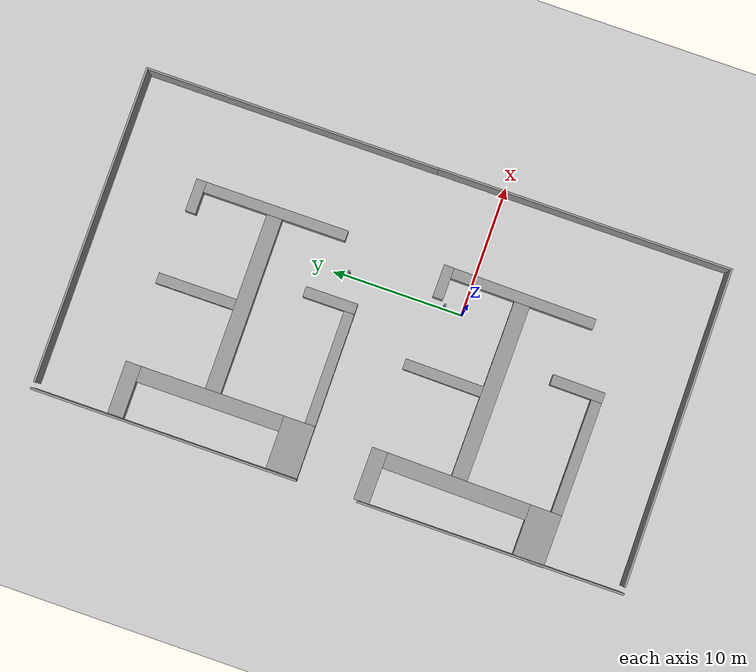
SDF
<sdf version="1.7">
 <world name="default">
  <light name="sun" type="directional">
   <pose>0 0 10 0 -0 0</pose>
   <diffuse>0.8 0.8 0.8 1</diffuse>
   <specular>0.2 0.2 0.2 1</specular>
   <attenuation>
    <range>1000</range>
    <constant>0.9</constant>
    <linear>0.01</linear>
    <quadratic>0.001</quadratic>
   </attenuation>
   <direction>-0.5 0.1 -0.9</direction>
   <spot><inner_angle>0</inner_angle><outer_angle>0</outer_angle><falloff>0</falloff></spot>
  </light>
  <model name="ground_plane">
   <static>1</static>
   <link name="link">
    <collision name="collision">
     <geometry><plane><normal>0 0 1</normal><size>100 100</size></plane></geometry>
     <surface><friction><ode><mu>100</mu><mu2>50</mu2></ode></friction></surface>
    </collision>
    <visual name="visual">
     <cast_shadows>0</cast_shadows>
     <geometry><plane><normal>0 0 1</normal><size>100 100</size></plane></geometry>
     <material>
      <script><uri>file://media/materials/scripts/gazebo.material</uri><name>Gazebo/Grey</name></script>
     </material>
    </visual>
   </link>
  </model>
  <gravity>0 0 -9.8</gravity>
  <magnetic_field>6e-06 2.3e-05 -4.2e-05</magnetic_field>
  <atmosphere type="adiabatic"/>
  <physics name="default_physics" default="0" type="ode">
   <max_step_size>0.001</max_step_size>
   <real_time_factor>1</real_time_factor>
   <real_time_update_rate>1000</real_time_update_rate>
  </physics>
  <scene><ambient>0.4 0.4 0.4 1</ambient><background>0.7 0.7 0.7 1</background><shadows>1</shadows></scene>
  <spherical_coordinates>
   <surface_model>EARTH_WGS84</surface_model>
   <latitude_deg>0</latitude_deg>
   <longitude_deg>0</longitude_deg>
   <elevation>0</elevation>
   <heading_deg>0</heading_deg>
  </spherical_coordinates>
  <model name="path">
   <link name="Wall_18">
    <pose>-12.5035 0.003409 0 0 -0 1.5708</pose>
    <inertial>
     <mass>1</mass>
     <inertia><ixx>1</ixx><ixy>0</ixy><ixz>0</ixz><iyy>1</iyy><iyz>0</iyz><izz>1</izz></inertia>
    </inertial>
    <visual name="Wall_18_Visual">
     <pose>0 0 0.5 0 -0 0</pose>
     <geometry><box><size>11 1.2 1</size></box></geometry>
     <material>
      <script><uri>file://media/materials/scripts/gazebo.material</uri><name>Gazebo/Grey</name></script>
      <ambient>1 1 1 1</ambient>
      <shader type="pixel"><normal_map>__default__</normal_map></shader>
      <diffuse>0.7 0.7 0.7 1</diffuse>
      <specular>0.01 0.01 0.01 1</specular>
      <emissive>0 0 0 1</emissive>
     </material>
     <meta><layer>0</layer></meta>
    </visual>
    <collision name="Wall_18_Collision">
     <pose>0 0 0.5 0 -0 0</pose>
     <geometry><box><size>11 1.2 1</size></box></geometry>
     <surface>
      <friction>
       <ode><mu>1</mu><mu2>1</mu2><fdir1>0 0 0</fdir1><slip1>0</slip1><slip2>0</slip2></ode>
       <torsional>
        <coefficient>1</coefficient>
        <patch_radius>0</patch_radius>
        <surface_radius>0</surface_radius>
        <use_patch_radius>1</use_patch_radius>
        <ode><slip>0</slip></ode>
       </torsional>
      </friction>
      <bounce><restitution_coefficient>0</restitution_coefficient><threshold>1e+06</threshold></bounce>
      <contact>
       <collide_without_contact>0</collide_without_contact>
       <collide_without_contact_bitmask>1</collide_without_contact_bitmask>
       <collide_bitmask>1</collide_bitmask>
       <ode>
        <soft_cfm>0</soft_cfm>
        <soft_erp>0.2</soft_erp>
        <kp>1e+13</kp>
        <kd>1</kd>
        <max_vel>0.01</max_vel>
        <min_depth>0</min_depth>
       </ode>
       <bullet>
        <split_impulse>1</split_impulse>
        <split_impulse_penetration_threshold>-0.01</split_impulse_penetration_threshold>
        <soft_cfm>0</soft_cfm>
        <soft_erp>0.2</soft_erp>
        <kp>1e+13</kp>
        <kd>1</kd>
       </bullet>
      </contact>
     </surface>
    </collision>
   </link>
   <link name="Wall_20">
    <pose>-5.15319 -0.016904 0 0 0 -0.000489</pose>
    <inertial>
     <mass>1</mass>
     <inertia><ixx>1</ixx><ixy>0</ixy><ixz>0</ixz><iyy>1</iyy><iyz>0</iyz><izz>1</izz></inertia>
    </inertial>
    <visual name="Wall_20_Visual">
     <pose>0 0 0.5 0 -0 0</pose>
     <geometry><box><size>13.5 1.2 1</size></box></geometry>
     <material>
      <script><uri>file://media/materials/scripts/gazebo.material</uri><name>Gazebo/Grey</name></script>
      <ambient>1 1 1 1</ambient>
      <shader type="pixel"><normal_map>__default__</normal_map></shader>
      <diffuse>0.7 0.7 0.7 1</diffuse>
      <specular>0.01 0.01 0.01 1</specular>
      <emissive>0 0 0 1</emissive>
     </material>
     <meta><layer>0</layer></meta>
    </visual>
    <collision name="Wall_20_Collision">
     <pose>0 0 0.5 0 -0 0</pose>
     <geometry><box><size>13.5 1.2 1</size></box></geometry>
     <surface>
      <friction>
       <ode><mu>1</mu><mu2>1</mu2><fdir1>0 0 0</fdir1><slip1>0</slip1><slip2>0</slip2></ode>
       <torsional>
        <coefficient>1</coefficient>
        <patch_radius>0</patch_radius>
        <surface_radius>0</surface_radius>
        <use_patch_radius>1</use_patch_radius>
        <ode><slip>0</slip></ode>
       </torsional>
      </friction>
      <bounce><restitution_coefficient>0</restitution_coefficient><threshold>1e+06</threshold></bounce>
      <contact>
       <collide_without_contact>0</collide_without_contact>
       <collide_without_contact_bitmask>1</collide_without_contact_bitmask>
       <collide_bitmask>1</collide_bitmask>
       <ode>
        <soft_cfm>0</soft_cfm>
        <soft_erp>0.2</soft_erp>
        <kp>1e+13</kp>
        <kd>1</kd>
        <max_vel>0.01</max_vel>
        <min_depth>0</min_depth>
       </ode>
       <bullet>
        <split_impulse>1</split_impulse>
        <split_impulse_penetration_threshold>-0.01</split_impulse_penetration_threshold>
        <soft_cfm>0</soft_cfm>
        <soft_erp>0.2</soft_erp>
        <kp>1e+13</kp>
        <kd>1</kd>
       </bullet>
      </contact>
     </surface>
    </collision>
   </link>
   <link name="Wall_21">
    <pose>1.99706 0.024718 0 0 -0 1.57072</pose>
    <inertial>
     <mass>1</mass>
     <inertia><ixx>1</ixx><ixy>0</ixy><ixz>0</ixz><iyy>1</iyy><iyz>0</iyz><izz>1</izz></inertia>
    </inertial>
    <visual name="Wall_21_Visual">
     <pose>0 0 0.5 0 -0 0</pose>
     <geometry><box><size>11 0.8 1</size></box></geometry>
     <material>
      <script><uri>file://media/materials/scripts/gazebo.material</uri><name>Gazebo/Grey</name></script>
      <ambient>1 1 1 1</ambient>
      <shader type="pixel"><normal_map>__default__</normal_map></shader>
      <diffuse>0.7 0.7 0.7 1</diffuse>
      <specular>0.01 0.01 0.01 1</specular>
      <emissive>0 0 0 1</emissive>
     </material>
     <meta><layer>0</layer></meta>
    </visual>
    <collision name="Wall_21_Collision">
     <pose>0 0 0.5 0 -0 0</pose>
     <geometry><box><size>11 0.8 1</size></box></geometry>
     <surface>
      <friction>
       <ode><mu>1</mu><mu2>1</mu2><fdir1>0 0 0</fdir1><slip1>0</slip1><slip2>0</slip2></ode>
       <torsional>
        <coefficient>1</coefficient>
        <patch_radius>0</patch_radius>
        <surface_radius>0</surface_radius>
        <use_patch_radius>1</use_patch_radius>
        <ode><slip>0</slip></ode>
       </torsional>
      </friction>
      <bounce><restitution_coefficient>0</restitution_coefficient><threshold>1e+06</threshold></bounce>
      <contact>
       <collide_without_contact>0</collide_without_contact>
       <collide_without_contact_bitmask>1</collide_without_contact_bitmask>
       <collide_bitmask>1</collide_bitmask>
       <ode>
        <soft_cfm>0</soft_cfm>
        <soft_erp>0.2</soft_erp>
        <kp>1e+13</kp>
        <kd>1</kd>
        <max_vel>0.01</max_vel>
        <min_depth>0</min_depth>
       </ode>
       <bullet>
        <split_impulse>1</split_impulse>
        <split_impulse_penetration_threshold>-0.01</split_impulse_penetration_threshold>
        <soft_cfm>0</soft_cfm>
        <soft_erp>0.2</soft_erp>
        <kp>1e+13</kp>
        <kd>1</kd>
       </bullet>
      </contact>
     </surface>
    </collision>
   </link>
   <link name="Wall_25">
    <pose>-5.42538 3.58343 0 0 -0 1.5708</pose>
    <inertial>
     <mass>1</mass>
     <inertia><ixx>1</ixx><ixy>0</ixy><ixz>0</ixz><iyy>1</iyy><iyz>0</iyz><izz>1</izz></inertia>
    </inertial>
    <visual name="Wall_25_Visual">
     <pose>0 0 0.5 0 -0 0</pose>
     <geometry><box><size>6 0.8 1</size></box></geometry>
     <material>
      <script><uri>file://media/materials/scripts/gazebo.material</uri><name>Gazebo/Grey</name></script>
      <ambient>1 1 1 1</ambient>
      <shader type="pixel"><normal_map>__default__</normal_map></shader>
      <diffuse>0.7 0.7 0.7 1</diffuse>
      <specular>0.01 0.01 0.01 1</specular>
      <emissive>0 0 0 1</emissive>
     </material>
     <meta><layer>0</layer></meta>
    </visual>
    <collision name="Wall_25_Collision">
     <pose>0 0 0.5 0 -0 0</pose>
     <geometry><box><size>6 0.8 1</size></box></geometry>
     <surface>
      <friction>
       <ode><mu>1</mu><mu2>1</mu2><fdir1>0 0 0</fdir1><slip1>0</slip1><slip2>0</slip2></ode>
       <torsional>
        <coefficient>1</coefficient>
        <patch_radius>0</patch_radius>
        <surface_radius>0</surface_radius>
        <use_patch_radius>1</use_patch_radius>
        <ode><slip>0</slip></ode>
       </torsional>
      </friction>
      <bounce><restitution_coefficient>0</restitution_coefficient><threshold>1e+06</threshold></bounce>
      <contact>
       <collide_without_contact>0</collide_without_contact>
       <collide_without_contact_bitmask>1</collide_without_contact_bitmask>
       <collide_bitmask>1</collide_bitmask>
       <ode>
        <soft_cfm>0</soft_cfm>
        <soft_erp>0.2</soft_erp>
        <kp>1e+13</kp>
        <kd>1</kd>
        <max_vel>0.01</max_vel>
        <min_depth>0</min_depth>
       </ode>
       <bullet>
        <split_impulse>1</split_impulse>
        <split_impulse_penetration_threshold>-0.01</split_impulse_penetration_threshold>
        <soft_cfm>0</soft_cfm>
        <soft_erp>0.2</soft_erp>
        <kp>1e+13</kp>
        <kd>1</kd>
       </bullet>
      </contact>
     </surface>
    </collision>
   </link>
   <link name="Wall_27">
    <pose>-7.5785 -7.49658 0 0 -0 0</pose>
    <inertial>
     <mass>1</mass>
     <inertia><ixx>1</ixx><ixy>0</ixy><ixz>0</ixz><iyy>1</iyy><iyz>0</iyz><izz>1</izz></inertia>
    </inertial>
    <visual name="Wall_27_Visual">
     <pose>0 0 0.5 0 -0 0</pose>
     <geometry><box><size>8.65 0.8 1</size></box></geometry>
     <material>
      <script><uri>file://media/materials/scripts/gazebo.material</uri><name>Gazebo/Grey</name></script>
      <ambient>1 1 1 1</ambient>
      <shader type="pixel"><normal_map>__default__</normal_map></shader>
      <diffuse>0.7 0.7 0.7 1</diffuse>
      <specular>0.01 0.01 0.01 1</specular>
      <emissive>0 0 0 1</emissive>
     </material>
     <meta><layer>0</layer></meta>
    </visual>
    <collision name="Wall_27_Collision">
     <pose>0 0 0.5 0 -0 0</pose>
     <geometry><box><size>8.65 0.8 1</size></box></geometry>
     <surface>
      <friction>
       <ode><mu>1</mu><mu2>1</mu2><fdir1>0 0 0</fdir1><slip1>0</slip1><slip2>0</slip2></ode>
       <torsional>
        <coefficient>1</coefficient>
        <patch_radius>0</patch_radius>
        <surface_radius>0</surface_radius>
        <use_patch_radius>1</use_patch_radius>
        <ode><slip>0</slip></ode>
       </torsional>
      </friction>
      <bounce><restitution_coefficient>0</restitution_coefficient><threshold>1e+06</threshold></bounce>
      <contact>
       <collide_without_contact>0</collide_without_contact>
       <collide_without_contact_bitmask>1</collide_without_contact_bitmask>
       <collide_bitmask>1</collide_bitmask>
       <ode>
        <soft_cfm>0</soft_cfm>
        <soft_erp>0.2</soft_erp>
        <kp>1e+13</kp>
        <kd>1</kd>
        <max_vel>0.01</max_vel>
        <min_depth>0</min_depth>
       </ode>
       <bullet>
        <split_impulse>1</split_impulse>
        <split_impulse_penetration_threshold>-0.01</split_impulse_penetration_threshold>
        <soft_cfm>0</soft_cfm>
        <soft_erp>0.2</soft_erp>
        <kp>1e+13</kp>
        <kd>1</kd>
       </bullet>
      </contact>
     </surface>
    </collision>
   </link>
   <link name="Wall_31">
    <pose>-2.85351 -5.89658 0 0 0 -1.57079</pose>
    <inertial>
     <mass>1</mass>
     <inertia><ixx>1</ixx><ixy>0</ixy><ixz>0</ixz><iyy>1</iyy><iyz>0</iyz><izz>1</izz></inertia>
    </inertial>
    <visual name="Wall_31_Visual">
     <pose>0 0 0.5 0 -0 0</pose>
     <geometry><box><size>4 0.8 1</size></box></geometry>
     <material>
      <script><uri>file://media/materials/scripts/gazebo.material</uri><name>Gazebo/Grey</name></script>
      <ambient>1 1 1 1</ambient>
      <shader type="pixel"><normal_map>__default__</normal_map></shader>
      <diffuse>0.7 0.7 0.7 1</diffuse>
      <specular>0.01 0.01 0.01 1</specular>
      <emissive>0 0 0 1</emissive>
     </material>
     <meta><layer>0</layer></meta>
    </visual>
    <collision name="Wall_31_Collision">
     <pose>0 0 0.5 0 -0 0</pose>
     <geometry><box><size>4 0.8 1</size></box></geometry>
     <surface>
      <friction>
       <ode><mu>1</mu><mu2>1</mu2><fdir1>0 0 0</fdir1><slip1>0</slip1><slip2>0</slip2></ode>
       <torsional>
        <coefficient>1</coefficient>
        <patch_radius>0</patch_radius>
        <surface_radius>0</surface_radius>
        <use_patch_radius>1</use_patch_radius>
        <ode><slip>0</slip></ode>
       </torsional>
      </friction>
      <bounce><restitution_coefficient>0</restitution_coefficient><threshold>1e+06</threshold></bounce>
      <contact>
       <collide_without_contact>0</collide_without_contact>
       <collide_without_contact_bitmask>1</collide_without_contact_bitmask>
       <collide_bitmask>1</collide_bitmask>
       <ode>
        <soft_cfm>0</soft_cfm>
        <soft_erp>0.2</soft_erp>
        <kp>1e+13</kp>
        <kd>1</kd>
        <max_vel>0.01</max_vel>
        <min_depth>0</min_depth>
       </ode>
       <bullet>
        <split_impulse>1</split_impulse>
        <split_impulse_penetration_threshold>-0.01</split_impulse_penetration_threshold>
        <soft_cfm>0</soft_cfm>
        <soft_erp>0.2</soft_erp>
        <kp>1e+13</kp>
        <kd>1</kd>
       </bullet>
      </contact>
     </surface>
    </collision>
   </link>
   <link name="Wall_35">
    <pose>1.1473 5.91911 0 0 -0 0.000465</pose>
    <inertial>
     <mass>1</mass>
     <inertia><ixx>1</ixx><ixy>0</ixy><ixz>0</ixz><iyy>1</iyy><iyz>0</iyz><izz>1</izz></inertia>
    </inertial>
    <visual name="Wall_35_Visual">
     <pose>0 0 0.5 0 -0 0</pose>
     <geometry><box><size>2.5 0.79 1</size></box></geometry>
     <material>
      <script><uri>file://media/materials/scripts/gazebo.material</uri><name>Gazebo/Grey</name></script>
      <ambient>1 1 1 1</ambient>
      <shader type="pixel"><normal_map>__default__</normal_map></shader>
      <diffuse>0.7 0.7 0.7 1</diffuse>
      <specular>0.01 0.01 0.01 1</specular>
      <emissive>0 0 0 1</emissive>
     </material>
     <meta><layer>0</layer></meta>
    </visual>
    <collision name="Wall_35_Collision">
     <pose>0 0 0.5 0 -0 0</pose>
     <geometry><box><size>2.5 0.8 1</size></box></geometry>
     <surface>
      <friction>
       <ode><mu>1</mu><mu2>1</mu2><fdir1>0 0 0</fdir1><slip1>0</slip1><slip2>0</slip2></ode>
       <torsional>
        <coefficient>1</coefficient>
        <patch_radius>0</patch_radius>
        <surface_radius>0</surface_radius>
        <use_patch_radius>1</use_patch_radius>
        <ode><slip>0</slip></ode>
       </torsional>
      </friction>
      <bounce><restitution_coefficient>0</restitution_coefficient><threshold>1e+06</threshold></bounce>
      <contact>
       <collide_without_contact>0</collide_without_contact>
       <collide_without_contact_bitmask>1</collide_without_contact_bitmask>
       <collide_bitmask>1</collide_bitmask>
       <ode>
        <soft_cfm>0</soft_cfm>
        <soft_erp>0.2</soft_erp>
        <kp>1e+13</kp>
        <kd>1</kd>
        <max_vel>0.01</max_vel>
        <min_depth>0</min_depth>
       </ode>
       <bullet>
        <split_impulse>1</split_impulse>
        <split_impulse_penetration_threshold>-0.01</split_impulse_penetration_threshold>
        <soft_cfm>0</soft_cfm>
        <soft_erp>0.2</soft_erp>
        <kp>1e+13</kp>
        <kd>1</kd>
       </bullet>
      </contact>
     </surface>
    </collision>
   </link>
   <link name="Wall_44">
    <pose>-13.9035 6.10342 0 0 -0 3.14159</pose>
    <inertial>
     <mass>1</mass>
     <inertia><ixx>1</ixx><ixy>0</ixy><ixz>0</ixz><iyy>1</iyy><iyz>0</iyz><izz>1</izz></inertia>
    </inertial>
    <visual name="Wall_44_Visual">
     <pose>0 0 0.5 0 -0 0</pose>
     <geometry><box><size>4 1.2 1</size></box></geometry>
     <material>
      <script><uri>file://media/materials/scripts/gazebo.material</uri><name>Gazebo/Grey</name></script>
      <ambient>1 1 1 1</ambient>
      <shader type="pixel"><normal_map>__default__</normal_map></shader>
      <diffuse>0.7 0.7 0.7 1</diffuse>
      <specular>0.01 0.01 0.01 1</specular>
      <emissive>0 0 0 1</emissive>
     </material>
     <meta><layer>0</layer></meta>
    </visual>
    <collision name="Wall_44_Collision">
     <pose>0 0 0.5 0 -0 0</pose>
     <geometry><box><size>4 1.2 1</size></box></geometry>
     <surface>
      <friction>
       <ode><mu>1</mu><mu2>1</mu2><fdir1>0 0 0</fdir1><slip1>0</slip1><slip2>0</slip2></ode>
       <torsional>
        <coefficient>1</coefficient>
        <patch_radius>0</patch_radius>
        <surface_radius>0</surface_radius>
        <use_patch_radius>1</use_patch_radius>
        <ode><slip>0</slip></ode>
       </torsional>
      </friction>
      <bounce><restitution_coefficient>0</restitution_coefficient><threshold>1e+06</threshold></bounce>
      <contact>
       <collide_without_contact>0</collide_without_contact>
       <collide_without_contact_bitmask>1</collide_without_contact_bitmask>
       <collide_bitmask>1</collide_bitmask>
       <ode>
        <soft_cfm>0</soft_cfm>
        <soft_erp>0.2</soft_erp>
        <kp>1e+13</kp>
        <kd>1</kd>
        <max_vel>0.01</max_vel>
        <min_depth>0</min_depth>
       </ode>
       <bullet>
        <split_impulse>1</split_impulse>
        <split_impulse_penetration_threshold>-0.01</split_impulse_penetration_threshold>
        <soft_cfm>0</soft_cfm>
        <soft_erp>0.2</soft_erp>
        <kp>1e+13</kp>
        <kd>1</kd>
       </bullet>
      </contact>
     </surface>
    </collision>
   </link>
   <link name="Wall_62">
    <pose>-13.9035 -6.69658 0 0 -0 0</pose>
    <inertial>
     <mass>1</mass>
     <inertia><ixx>1</ixx><ixy>0</ixy><ixz>0</ixz><iyy>1</iyy><iyz>0</iyz><izz>1</izz></inertia>
    </inertial>
    <visual name="Wall_62_Visual">
     <pose>0 0 0.5 0 -0 0</pose>
     <geometry><box><size>4 2.4 1</size></box></geometry>
     <material>
      <script><uri>file://media/materials/scripts/gazebo.material</uri><name>Gazebo/Grey</name></script>
      <ambient>1 1 1 1</ambient>
      <shader type="pixel"><normal_map>__default__</normal_map></shader>
      <diffuse>0.7 0.7 0.7 1</diffuse>
      <specular>0.01 0.01 0.01 1</specular>
      <emissive>0 0 0 1</emissive>
     </material>
     <meta><layer>0</layer></meta>
    </visual>
    <collision name="Wall_62_Collision">
     <pose>0 0 0.5 0 -0 0</pose>
     <geometry><box><size>4 2.4 1</size></box></geometry>
     <surface>
      <friction>
       <ode><mu>1</mu><mu2>1</mu2><fdir1>0 0 0</fdir1><slip1>0</slip1><slip2>0</slip2></ode>
       <torsional>
        <coefficient>1</coefficient>
        <patch_radius>0</patch_radius>
        <surface_radius>0</surface_radius>
        <use_patch_radius>1</use_patch_radius>
        <ode><slip>0</slip></ode>
       </torsional>
      </friction>
      <bounce><restitution_coefficient>0</restitution_coefficient><threshold>1e+06</threshold></bounce>
      <contact>
       <collide_without_contact>0</collide_without_contact>
       <collide_without_contact_bitmask>1</collide_without_contact_bitmask>
       <collide_bitmask>1</collide_bitmask>
       <ode>
        <soft_cfm>0</soft_cfm>
        <soft_erp>0.2</soft_erp>
        <kp>1e+13</kp>
        <kd>1</kd>
        <max_vel>0.01</max_vel>
        <min_depth>0</min_depth>
       </ode>
       <bullet>
        <split_impulse>1</split_impulse>
        <split_impulse_penetration_threshold>-0.01</split_impulse_penetration_threshold>
        <soft_cfm>0</soft_cfm>
        <soft_erp>0.2</soft_erp>
        <kp>1e+13</kp>
        <kd>1</kd>
       </bullet>
      </contact>
     </surface>
    </collision>
   </link>
   <static>1</static>
   <pose>0.584 -3.8162 0 -0.004224 -0 -0.014435</pose>
  </model>
  <model name="path_clone">
   <link name="Wall_18">
    <pose>-12.5035 0.003409 0 0 -0 1.5708</pose>
    <inertial>
     <mass>1</mass>
     <inertia><ixx>1</ixx><ixy>0</ixy><ixz>0</ixz><iyy>1</iyy><iyz>0</iyz><izz>1</izz></inertia>
    </inertial>
    <visual name="Wall_18_Visual">
     <pose>0 0 0.5 0 -0 0</pose>
     <geometry><box><size>11 1.2 1</size></box></geometry>
     <material>
      <script><uri>file://media/materials/scripts/gazebo.material</uri><name>Gazebo/Grey</name></script>
      <ambient>1 1 1 1</ambient>
      <shader type="pixel"><normal_map>__default__</normal_map></shader>
      <diffuse>0.7 0.7 0.7 1</diffuse>
      <specular>0.01 0.01 0.01 1</specular>
      <emissive>0 0 0 1</emissive>
     </material>
     <meta><layer>0</layer></meta>
    </visual>
    <collision name="Wall_18_Collision">
     <pose>0 0 0.5 0 -0 0</pose>
     <geometry><box><size>11 1.2 1</size></box></geometry>
     <surface>
      <friction>
       <ode><mu>1</mu><mu2>1</mu2><fdir1>0 0 0</fdir1><slip1>0</slip1><slip2>0</slip2></ode>
       <torsional>
        <coefficient>1</coefficient>
        <patch_radius>0</patch_radius>
        <surface_radius>0</surface_radius>
        <use_patch_radius>1</use_patch_radius>
        <ode><slip>0</slip></ode>
       </torsional>
      </friction>
      <bounce><restitution_coefficient>0</restitution_coefficient><threshold>1e+06</threshold></bounce>
      <contact>
       <collide_without_contact>0</collide_without_contact>
       <collide_without_contact_bitmask>1</collide_without_contact_bitmask>
       <collide_bitmask>1</collide_bitmask>
       <ode>
        <soft_cfm>0</soft_cfm>
        <soft_erp>0.2</soft_erp>
        <kp>1e+13</kp>
        <kd>1</kd>
        <max_vel>0.01</max_vel>
        <min_depth>0</min_depth>
       </ode>
       <bullet>
        <split_impulse>1</split_impulse>
        <split_impulse_penetration_threshold>-0.01</split_impulse_penetration_threshold>
        <soft_cfm>0</soft_cfm>
        <soft_erp>0.2</soft_erp>
        <kp>1e+13</kp>
        <kd>1</kd>
       </bullet>
      </contact>
     </surface>
    </collision>
   </link>
   <link name="Wall_20">
    <pose>-5.15319 -0.016904 0 0 0 -0.000489</pose>
    <inertial>
     <mass>1</mass>
     <inertia><ixx>1</ixx><ixy>0</ixy><ixz>0</ixz><iyy>1</iyy><iyz>0</iyz><izz>1</izz></inertia>
    </inertial>
    <visual name="Wall_20_Visual">
     <pose>0 0 0.5 0 -0 0</pose>
     <geometry><box><size>13.5 1.2 1</size></box></geometry>
     <material>
      <script><uri>file://media/materials/scripts/gazebo.material</uri><name>Gazebo/Grey</name></script>
      <ambient>1 1 1 1</ambient>
      <shader type="pixel"><normal_map>__default__</normal_map></shader>
      <diffuse>0.7 0.7 0.7 1</diffuse>
      <specular>0.01 0.01 0.01 1</specular>
      <emissive>0 0 0 1</emissive>
     </material>
     <meta><layer>0</layer></meta>
    </visual>
    <collision name="Wall_20_Collision">
     <pose>0 0 0.5 0 -0 0</pose>
     <geometry><box><size>13.5 1.2 1</size></box></geometry>
     <surface>
      <friction>
       <ode><mu>1</mu><mu2>1</mu2><fdir1>0 0 0</fdir1><slip1>0</slip1><slip2>0</slip2></ode>
       <torsional>
        <coefficient>1</coefficient>
        <patch_radius>0</patch_radius>
        <surface_radius>0</surface_radius>
        <use_patch_radius>1</use_patch_radius>
        <ode><slip>0</slip></ode>
       </torsional>
      </friction>
      <bounce><restitution_coefficient>0</restitution_coefficient><threshold>1e+06</threshold></bounce>
      <contact>
       <collide_without_contact>0</collide_without_contact>
       <collide_without_contact_bitmask>1</collide_without_contact_bitmask>
       <collide_bitmask>1</collide_bitmask>
       <ode>
        <soft_cfm>0</soft_cfm>
        <soft_erp>0.2</soft_erp>
        <kp>1e+13</kp>
        <kd>1</kd>
        <max_vel>0.01</max_vel>
        <min_depth>0</min_depth>
       </ode>
       <bullet>
        <split_impulse>1</split_impulse>
        <split_impulse_penetration_threshold>-0.01</split_impulse_penetration_threshold>
        <soft_cfm>0</soft_cfm>
        <soft_erp>0.2</soft_erp>
        <kp>1e+13</kp>
        <kd>1</kd>
       </bullet>
      </contact>
     </surface>
    </collision>
   </link>
   <link name="Wall_21">
    <pose>1.99706 0.024718 0 0 -0 1.57072</pose>
    <inertial>
     <mass>1</mass>
     <inertia><ixx>1</ixx><ixy>0</ixy><ixz>0</ixz><iyy>1</iyy><iyz>0</iyz><izz>1</izz></inertia>
    </inertial>
    <visual name="Wall_21_Visual">
     <pose>0 0 0.5 0 -0 0</pose>
     <geometry><box><size>11 0.8 1</size></box></geometry>
     <material>
      <script><uri>file://media/materials/scripts/gazebo.material</uri><name>Gazebo/Grey</name></script>
      <ambient>1 1 1 1</ambient>
      <shader type="pixel"><normal_map>__default__</normal_map></shader>
      <diffuse>0.7 0.7 0.7 1</diffuse>
      <specular>0.01 0.01 0.01 1</specular>
      <emissive>0 0 0 1</emissive>
     </material>
     <meta><layer>0</layer></meta>
    </visual>
    <collision name="Wall_21_Collision">
     <pose>0 0 0.5 0 -0 0</pose>
     <geometry><box><size>11 0.8 1</size></box></geometry>
     <surface>
      <friction>
       <ode><mu>1</mu><mu2>1</mu2><fdir1>0 0 0</fdir1><slip1>0</slip1><slip2>0</slip2></ode>
       <torsional>
        <coefficient>1</coefficient>
        <patch_radius>0</patch_radius>
        <surface_radius>0</surface_radius>
        <use_patch_radius>1</use_patch_radius>
        <ode><slip>0</slip></ode>
       </torsional>
      </friction>
      <bounce><restitution_coefficient>0</restitution_coefficient><threshold>1e+06</threshold></bounce>
      <contact>
       <collide_without_contact>0</collide_without_contact>
       <collide_without_contact_bitmask>1</collide_without_contact_bitmask>
       <collide_bitmask>1</collide_bitmask>
       <ode>
        <soft_cfm>0</soft_cfm>
        <soft_erp>0.2</soft_erp>
        <kp>1e+13</kp>
        <kd>1</kd>
        <max_vel>0.01</max_vel>
        <min_depth>0</min_depth>
       </ode>
       <bullet>
        <split_impulse>1</split_impulse>
        <split_impulse_penetration_threshold>-0.01</split_impulse_penetration_threshold>
        <soft_cfm>0</soft_cfm>
        <soft_erp>0.2</soft_erp>
        <kp>1e+13</kp>
        <kd>1</kd>
       </bullet>
      </contact>
     </surface>
    </collision>
   </link>
   <link name="Wall_25">
    <pose>-5.42538 3.58343 0 0 -0 1.5708</pose>
    <inertial>
     <mass>1</mass>
     <inertia><ixx>1</ixx><ixy>0</ixy><ixz>0</ixz><iyy>1</iyy><iyz>0</iyz><izz>1</izz></inertia>
    </inertial>
    <visual name="Wall_25_Visual">
     <pose>0 0 0.5 0 -0 0</pose>
     <geometry><box><size>6 0.8 1</size></box></geometry>
     <material>
      <script><uri>file://media/materials/scripts/gazebo.material</uri><name>Gazebo/Grey</name></script>
      <ambient>1 1 1 1</ambient>
      <shader type="pixel"><normal_map>__default__</normal_map></shader>
      <diffuse>0.7 0.7 0.7 1</diffuse>
      <specular>0.01 0.01 0.01 1</specular>
      <emissive>0 0 0 1</emissive>
     </material>
     <meta><layer>0</layer></meta>
    </visual>
    <collision name="Wall_25_Collision">
     <pose>0 0 0.5 0 -0 0</pose>
     <geometry><box><size>6 0.8 1</size></box></geometry>
     <surface>
      <friction>
       <ode><mu>1</mu><mu2>1</mu2><fdir1>0 0 0</fdir1><slip1>0</slip1><slip2>0</slip2></ode>
       <torsional>
        <coefficient>1</coefficient>
        <patch_radius>0</patch_radius>
        <surface_radius>0</surface_radius>
        <use_patch_radius>1</use_patch_radius>
        <ode><slip>0</slip></ode>
       </torsional>
      </friction>
      <bounce><restitution_coefficient>0</restitution_coefficient><threshold>1e+06</threshold></bounce>
      <contact>
       <collide_without_contact>0</collide_without_contact>
       <collide_without_contact_bitmask>1</collide_without_contact_bitmask>
       <collide_bitmask>1</collide_bitmask>
       <ode>
        <soft_cfm>0</soft_cfm>
        <soft_erp>0.2</soft_erp>
        <kp>1e+13</kp>
        <kd>1</kd>
        <max_vel>0.01</max_vel>
        <min_depth>0</min_depth>
       </ode>
       <bullet>
        <split_impulse>1</split_impulse>
        <split_impulse_penetration_threshold>-0.01</split_impulse_penetration_threshold>
        <soft_cfm>0</soft_cfm>
        <soft_erp>0.2</soft_erp>
        <kp>1e+13</kp>
        <kd>1</kd>
       </bullet>
      </contact>
     </surface>
    </collision>
   </link>
   <link name="Wall_27">
    <pose>-7.5785 -7.49658 0 0 -0 0</pose>
    <inertial>
     <mass>1</mass>
     <inertia><ixx>1</ixx><ixy>0</ixy><ixz>0</ixz><iyy>1</iyy><iyz>0</iyz><izz>1</izz></inertia>
    </inertial>
    <visual name="Wall_27_Visual">
     <pose>0 0 0.5 0 -0 0</pose>
     <geometry><box><size>8.65 0.8 1</size></box></geometry>
     <material>
      <script><uri>file://media/materials/scripts/gazebo.material</uri><name>Gazebo/Grey</name></script>
      <ambient>1 1 1 1</ambient>
      <shader type="pixel"><normal_map>__default__</normal_map></shader>
      <diffuse>0.7 0.7 0.7 1</diffuse>
      <specular>0.01 0.01 0.01 1</specular>
      <emissive>0 0 0 1</emissive>
     </material>
     <meta><layer>0</layer></meta>
    </visual>
    <collision name="Wall_27_Collision">
     <pose>0 0 0.5 0 -0 0</pose>
     <geometry><box><size>8.65 0.8 1</size></box></geometry>
     <surface>
      <friction>
       <ode><mu>1</mu><mu2>1</mu2><fdir1>0 0 0</fdir1><slip1>0</slip1><slip2>0</slip2></ode>
       <torsional>
        <coefficient>1</coefficient>
        <patch_radius>0</patch_radius>
        <surface_radius>0</surface_radius>
        <use_patch_radius>1</use_patch_radius>
        <ode><slip>0</slip></ode>
       </torsional>
      </friction>
      <bounce><restitution_coefficient>0</restitution_coefficient><threshold>1e+06</threshold></bounce>
      <contact>
       <collide_without_contact>0</collide_without_contact>
       <collide_without_contact_bitmask>1</collide_without_contact_bitmask>
       <collide_bitmask>1</collide_bitmask>
       <ode>
        <soft_cfm>0</soft_cfm>
        <soft_erp>0.2</soft_erp>
        <kp>1e+13</kp>
        <kd>1</kd>
        <max_vel>0.01</max_vel>
        <min_depth>0</min_depth>
       </ode>
       <bullet>
        <split_impulse>1</split_impulse>
        <split_impulse_penetration_threshold>-0.01</split_impulse_penetration_threshold>
        <soft_cfm>0</soft_cfm>
        <soft_erp>0.2</soft_erp>
        <kp>1e+13</kp>
        <kd>1</kd>
       </bullet>
      </contact>
     </surface>
    </collision>
   </link>
   <link name="Wall_31">
    <pose>-2.85351 -5.89658 0 0 0 -1.57079</pose>
    <inertial>
     <mass>1</mass>
     <inertia><ixx>1</ixx><ixy>0</ixy><ixz>0</ixz><iyy>1</iyy><iyz>0</iyz><izz>1</izz></inertia>
    </inertial>
    <visual name="Wall_31_Visual">
     <pose>0 0 0.5 0 -0 0</pose>
     <geometry><box><size>4 0.8 1</size></box></geometry>
     <material>
      <script><uri>file://media/materials/scripts/gazebo.material</uri><name>Gazebo/Grey</name></script>
      <ambient>1 1 1 1</ambient>
      <shader type="pixel"><normal_map>__default__</normal_map></shader>
      <diffuse>0.7 0.7 0.7 1</diffuse>
      <specular>0.01 0.01 0.01 1</specular>
      <emissive>0 0 0 1</emissive>
     </material>
     <meta><layer>0</layer></meta>
    </visual>
    <collision name="Wall_31_Collision">
     <pose>0 0 0.5 0 -0 0</pose>
     <geometry><box><size>4 0.8 1</size></box></geometry>
     <surface>
      <friction>
       <ode><mu>1</mu><mu2>1</mu2><fdir1>0 0 0</fdir1><slip1>0</slip1><slip2>0</slip2></ode>
       <torsional>
        <coefficient>1</coefficient>
        <patch_radius>0</patch_radius>
        <surface_radius>0</surface_radius>
        <use_patch_radius>1</use_patch_radius>
        <ode><slip>0</slip></ode>
       </torsional>
      </friction>
      <bounce><restitution_coefficient>0</restitution_coefficient><threshold>1e+06</threshold></bounce>
      <contact>
       <collide_without_contact>0</collide_without_contact>
       <collide_without_contact_bitmask>1</collide_without_contact_bitmask>
       <collide_bitmask>1</collide_bitmask>
       <ode>
        <soft_cfm>0</soft_cfm>
        <soft_erp>0.2</soft_erp>
        <kp>1e+13</kp>
        <kd>1</kd>
        <max_vel>0.01</max_vel>
        <min_depth>0</min_depth>
       </ode>
       <bullet>
        <split_impulse>1</split_impulse>
        <split_impulse_penetration_threshold>-0.01</split_impulse_penetration_threshold>
        <soft_cfm>0</soft_cfm>
        <soft_erp>0.2</soft_erp>
        <kp>1e+13</kp>
        <kd>1</kd>
       </bullet>
      </contact>
     </surface>
    </collision>
   </link>
   <link name="Wall_35">
    <pose>1.1473 5.91911 0 0 -0 0.000465</pose>
    <inertial>
     <mass>1</mass>
     <inertia><ixx>1</ixx><ixy>0</ixy><ixz>0</ixz><iyy>1</iyy><iyz>0</iyz><izz>1</izz></inertia>
    </inertial>
    <visual name="Wall_35_Visual">
     <pose>0 0 0.5 0 -0 0</pose>
     <geometry><box><size>2.5 0.79 1</size></box></geometry>
     <material>
      <script><uri>file://media/materials/scripts/gazebo.material</uri><name>Gazebo/Grey</name></script>
      <ambient>1 1 1 1</ambient>
      <shader type="pixel"><normal_map>__default__</normal_map></shader>
      <diffuse>0.7 0.7 0.7 1</diffuse>
      <specular>0.01 0.01 0.01 1</specular>
      <emissive>0 0 0 1</emissive>
     </material>
     <meta><layer>0</layer></meta>
    </visual>
    <collision name="Wall_35_Collision">
     <pose>0 0 0.5 0 -0 0</pose>
     <geometry><box><size>2.5 0.8 1</size></box></geometry>
     <surface>
      <friction>
       <ode><mu>1</mu><mu2>1</mu2><fdir1>0 0 0</fdir1><slip1>0</slip1><slip2>0</slip2></ode>
       <torsional>
        <coefficient>1</coefficient>
        <patch_radius>0</patch_radius>
        <surface_radius>0</surface_radius>
        <use_patch_radius>1</use_patch_radius>
        <ode><slip>0</slip></ode>
       </torsional>
      </friction>
      <bounce><restitution_coefficient>0</restitution_coefficient><threshold>1e+06</threshold></bounce>
      <contact>
       <collide_without_contact>0</collide_without_contact>
       <collide_without_contact_bitmask>1</collide_without_contact_bitmask>
       <collide_bitmask>1</collide_bitmask>
       <ode>
        <soft_cfm>0</soft_cfm>
        <soft_erp>0.2</soft_erp>
        <kp>1e+13</kp>
        <kd>1</kd>
        <max_vel>0.01</max_vel>
        <min_depth>0</min_depth>
       </ode>
       <bullet>
        <split_impulse>1</split_impulse>
        <split_impulse_penetration_threshold>-0.01</split_impulse_penetration_threshold>
        <soft_cfm>0</soft_cfm>
        <soft_erp>0.2</soft_erp>
        <kp>1e+13</kp>
        <kd>1</kd>
       </bullet>
      </contact>
     </surface>
    </collision>
   </link>
   <link name="Wall_44">
    <pose>-13.9035 6.10342 0 0 -0 3.14159</pose>
    <inertial>
     <mass>1</mass>
     <inertia><ixx>1</ixx><ixy>0</ixy><ixz>0</ixz><iyy>1</iyy><iyz>0</iyz><izz>1</izz></inertia>
    </inertial>
    <visual name="Wall_44_Visual">
     <pose>0 0 0.5 0 -0 0</pose>
     <geometry><box><size>4 1.2 1</size></box></geometry>
     <material>
      <script><uri>file://media/materials/scripts/gazebo.material</uri><name>Gazebo/Grey</name></script>
      <ambient>1 1 1 1</ambient>
      <shader type="pixel"><normal_map>__default__</normal_map></shader>
      <diffuse>0.7 0.7 0.7 1</diffuse>
      <specular>0.01 0.01 0.01 1</specular>
      <emissive>0 0 0 1</emissive>
     </material>
     <meta><layer>0</layer></meta>
    </visual>
    <collision name="Wall_44_Collision">
     <pose>0 0 0.5 0 -0 0</pose>
     <geometry><box><size>4 1.2 1</size></box></geometry>
     <surface>
      <friction>
       <ode><mu>1</mu><mu2>1</mu2><fdir1>0 0 0</fdir1><slip1>0</slip1><slip2>0</slip2></ode>
       <torsional>
        <coefficient>1</coefficient>
        <patch_radius>0</patch_radius>
        <surface_radius>0</surface_radius>
        <use_patch_radius>1</use_patch_radius>
        <ode><slip>0</slip></ode>
       </torsional>
      </friction>
      <bounce><restitution_coefficient>0</restitution_coefficient><threshold>1e+06</threshold></bounce>
      <contact>
       <collide_without_contact>0</collide_without_contact>
       <collide_without_contact_bitmask>1</collide_without_contact_bitmask>
       <collide_bitmask>1</collide_bitmask>
       <ode>
        <soft_cfm>0</soft_cfm>
        <soft_erp>0.2</soft_erp>
        <kp>1e+13</kp>
        <kd>1</kd>
        <max_vel>0.01</max_vel>
        <min_depth>0</min_depth>
       </ode>
       <bullet>
        <split_impulse>1</split_impulse>
        <split_impulse_penetration_threshold>-0.01</split_impulse_penetration_threshold>
        <soft_cfm>0</soft_cfm>
        <soft_erp>0.2</soft_erp>
        <kp>1e+13</kp>
        <kd>1</kd>
       </bullet>
      </contact>
     </surface>
    </collision>
   </link>
   <link name="Wall_62">
    <pose>-13.9035 -6.69658 0 0 -0 0</pose>
    <inertial>
     <mass>1</mass>
     <inertia><ixx>1</ixx><ixy>0</ixy><ixz>0</ixz><iyy>1</iyy><iyz>0</iyz><izz>1</izz></inertia>
    </inertial>
    <visual name="Wall_62_Visual">
     <pose>0 0 0.5 0 -0 0</pose>
     <geometry><box><size>4 2.4 1</size></box></geometry>
     <material>
      <script><uri>file://media/materials/scripts/gazebo.material</uri><name>Gazebo/Grey</name></script>
      <ambient>1 1 1 1</ambient>
      <shader type="pixel"><normal_map>__default__</normal_map></shader>
      <diffuse>0.7 0.7 0.7 1</diffuse>
      <specular>0.01 0.01 0.01 1</specular>
      <emissive>0 0 0 1</emissive>
     </material>
     <meta><layer>0</layer></meta>
    </visual>
    <collision name="Wall_62_Collision">
     <pose>0 0 0.5 0 -0 0</pose>
     <geometry><box><size>4 2.4 1</size></box></geometry>
     <surface>
      <friction>
       <ode><mu>1</mu><mu2>1</mu2><fdir1>0 0 0</fdir1><slip1>0</slip1><slip2>0</slip2></ode>
       <torsional>
        <coefficient>1</coefficient>
        <patch_radius>0</patch_radius>
        <surface_radius>0</surface_radius>
        <use_patch_radius>1</use_patch_radius>
        <ode><slip>0</slip></ode>
       </torsional>
      </friction>
      <bounce><restitution_coefficient>0</restitution_coefficient><threshold>1e+06</threshold></bounce>
      <contact>
       <collide_without_contact>0</collide_without_contact>
       <collide_without_contact_bitmask>1</collide_without_contact_bitmask>
       <collide_bitmask>1</collide_bitmask>
       <ode>
        <soft_cfm>0</soft_cfm>
        <soft_erp>0.2</soft_erp>
        <kp>1e+13</kp>
        <kd>1</kd>
        <max_vel>0.01</max_vel>
        <min_depth>0</min_depth>
       </ode>
       <bullet>
        <split_impulse>1</split_impulse>
        <split_impulse_penetration_threshold>-0.01</split_impulse_penetration_threshold>
        <soft_cfm>0</soft_cfm>
        <soft_erp>0.2</soft_erp>
        <kp>1e+13</kp>
        <kd>1</kd>
       </bullet>
      </contact>
     </surface>
    </collision>
   </link>
   <static>1</static>
   <pose>0.7114 15.3559 0 0 -0 0</pose>
  </model>
  <model name="Untitled">
   <pose>-2.95429 -4.27435 2.45514 -3.13544 3e-06 0</pose>
   <link name="Wall_13">
    <collision name="Wall_13_Collision">
     <geometry><box><size>22.5 0.15 2.5</size></box></geometry>
     <pose>0 0 1.25 0 -0 0</pose>
    </collision>
    <visual name="Wall_13_Visual">
     <pose>0 0 1.25 0 -0 0</pose>
     <geometry><box><size>22.5 0.15 2.5</size></box></geometry>
     <material>
      <script><uri>file://media/materials/scripts/gazebo.material</uri><name>Gazebo/Grey</name></script>
      <ambient>1 1 1 1</ambient>
     </material>
     <meta><layer>0</layer></meta>
    </visual>
    <pose>12.3371 1.85764 0 0 -0 1.5708</pose>
   </link>
   <link name="Wall_14">
    <collision name="Wall_14_Collision">
     <geometry><box><size>24.25 0.15 2.5</size></box></geometry>
     <pose>0 0 1.25 0 -0 0</pose>
    </collision>
    <visual name="Wall_14_Visual">
     <pose>0 0 1.25 0 -0 0</pose>
     <geometry><box><size>24.25 0.15 2.5</size></box></geometry>
     <material>
      <script><uri>file://media/materials/scripts/gazebo.material</uri><name>Gazebo/Grey</name></script>
      <ambient>1 1 1 1</ambient>
     </material>
     <meta><layer>0</layer></meta>
    </visual>
    <pose>0.287147 13.0326 0 0 -0 3.14159</pose>
   </link>
   <link name="Wall_16">
    <collision name="Wall_16_Collision">
     <geometry><box><size>20.25 0.15 2.5</size></box></geometry>
     <pose>0 0 1.25 0 -0 0</pose>
    </collision>
    <visual name="Wall_16_Visual">
     <pose>0 0 1.25 0 -0 0</pose>
     <geometry><box><size>20.25 0.15 2.5</size></box></geometry>
     <material>
      <script><uri>file://media/materials/scripts/gazebo.material</uri><name>Gazebo/Grey</name></script>
      <ambient>1 1 1 1</ambient>
     </material>
     <meta><layer>0</layer></meta>
    </visual>
    <pose>-12.3371 3.02414 0 0 -0 -1.5708</pose>
   </link>
   <link name="Wall_3">
    <collision name="Wall_3_Collision">
     <geometry><box><size>0.15 0.15 2.5</size></box></geometry>
     <pose>0 0 1.25 0 -0 0</pose>
    </collision>
    <visual name="Wall_3_Visual">
     <pose>0 0 1.25 0 -0 0</pose>
     <geometry><box><size>0.15 0.15 2.5</size></box></geometry>
     <material>
      <script><uri>file://media/materials/scripts/gazebo.material</uri><name>Gazebo/Grey</name></script>
      <ambient>1 1 1 1</ambient>
     </material>
     <meta><layer>0</layer></meta>
    </visual>
    <pose>3.1442 -13.0741 0 0 -0 0</pose>
   </link>
   <static>1</static>
  </model>
  <light name="user_spot_light_0" type="spot">
   <pose>-17.701 -7.74708 1 0 -0 0</pose>
   <diffuse>0.5 0.5 0.5 1</diffuse>
   <specular>0.1 0.1 0.1 1</specular>
   <direction>0 0 -1</direction>
   <attenuation>
    <range>20</range>
    <constant>0.5</constant>
    <linear>0.01</linear>
    <quadratic>0.001</quadratic>
   </attenuation>
   <cast_shadows>0</cast_shadows>
   <spot><inner_angle>0.6</inner_angle><outer_angle>1</outer_angle><falloff>1</falloff></spot>
  </light>
  <light name="user_point_light_0" type="point">
   <pose>-56.5922 34.0935 1 0 -0 0</pose>
   <diffuse>0.5 0.5 0.5 1</diffuse>
   <specular>0.1 0.1 0.1 1</specular>
   <attenuation>
    <range>20</range>
    <constant>0.5</constant>
    <linear>0.01</linear>
    <quadratic>0.001</quadratic>
   </attenuation>
   <cast_shadows>0</cast_shadows>
   <direction>0 0 -1</direction>
   <spot><inner_angle>0</inner_angle><outer_angle>0</outer_angle><falloff>0</falloff></spot>
  </light>
  <model name="Untitled_clone">
   <pose>-2.96743 14.5292 0.024968 0.007875 -0 0</pose>
   <link name="Wall_13">
    <collision name="Wall_13_Collision">
     <geometry><box><size>22.5 0.15 2.5</size></box></geometry>
     <pose>0 0 1.25 0 -0 0</pose>
    </collision>
    <visual name="Wall_13_Visual">
     <pose>0 0 1.25 0 -0 0</pose>
     <geometry><box><size>22.5 0.15 2.5</size></box></geometry>
     <material>
      <script><uri>file://media/materials/scripts/gazebo.material</uri><name>Gazebo/Grey</name></script>
      <ambient>1 1 1 1</ambient>
     </material>
     <meta><layer>0</layer></meta>
    </visual>
    <pose>12.3371 1.85764 0 0 -0 1.5708</pose>
   </link>
   <link name="Wall_14">
    <collision name="Wall_14_Collision">
     <geometry><box><size>24.25 0.15 2.5</size></box></geometry>
     <pose>0 0 1.25 0 -0 0</pose>
    </collision>
    <visual name="Wall_14_Visual">
     <pose>0 0 1.25 0 -0 0</pose>
     <geometry><box><size>24.25 0.15 2.5</size></box></geometry>
     <material>
      <script><uri>file://media/materials/scripts/gazebo.material</uri><name>Gazebo/Grey</name></script>
      <ambient>1 1 1 1</ambient>
     </material>
     <meta><layer>0</layer></meta>
    </visual>
    <pose>0.287147 13.0326 0 0 -0 3.14159</pose>
   </link>
   <link name="Wall_16">
    <collision name="Wall_16_Collision">
     <geometry><box><size>20.25 0.15 2.5</size></box></geometry>
     <pose>0 0 1.25 0 -0 0</pose>
    </collision>
    <visual name="Wall_16_Visual">
     <pose>0 0 1.25 0 -0 0</pose>
     <geometry><box><size>20.25 0.15 2.5</size></box></geometry>
     <material>
      <script><uri>file://media/materials/scripts/gazebo.material</uri><name>Gazebo/Grey</name></script>
      <ambient>1 1 1 1</ambient>
     </material>
     <meta><layer>0</layer></meta>
    </visual>
    <pose>-12.3371 3.02414 0 0 -0 -1.5708</pose>
   </link>
   <link name="Wall_3">
    <collision name="Wall_3_Collision">
     <geometry><box><size>0.15 0.15 2.5</size></box></geometry>
     <pose>0 0 1.25 0 -0 0</pose>
    </collision>
    <visual name="Wall_3_Visual">
     <pose>0 0 1.25 0 -0 0</pose>
     <geometry><box><size>0.15 0.15 2.5</size></box></geometry>
     <material>
      <script><uri>file://media/materials/scripts/gazebo.material</uri><name>Gazebo/Grey</name></script>
      <ambient>1 1 1 1</ambient>
     </material>
     <meta><layer>0</layer></meta>
    </visual>
    <pose>3.1442 -13.0741 0 0 -0 0</pose>
   </link>
   <static>1</static>
  </model>
  <link name="transparent_block">
   <visual>
    <geometry><box><size>2 2 1</size></box></geometry>
    <material name="transparent"><color rgba="1 1 1 0.0"/></material>
   </visual>
   <collision><geometry><box><size>2 2 1</size></box></geometry></collision>
  </link>
 </world>
</sdf>
